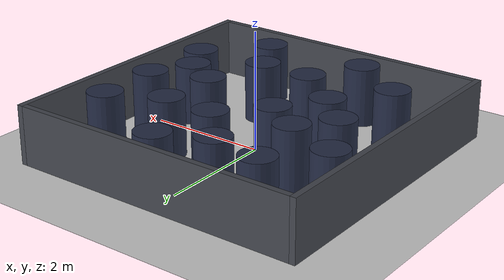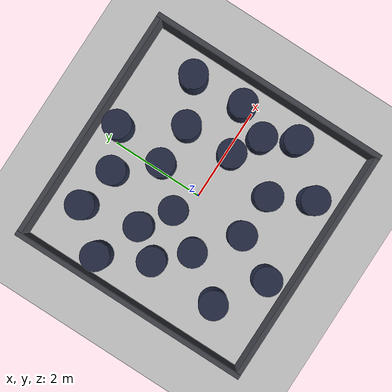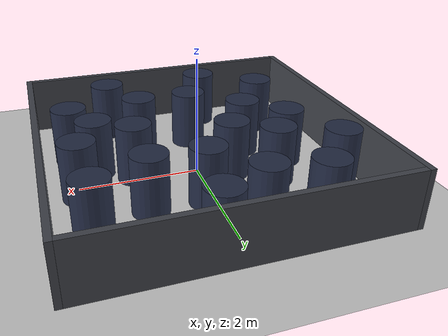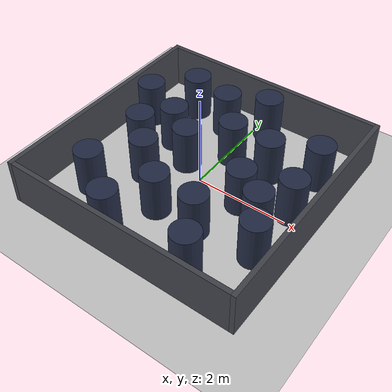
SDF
<sdf version="1.7">
 <world name="default">
  <model name="ground_plane">
   <static>1</static>
   <link name="link">
    <collision name="collision">
     <geometry><plane><normal>0 0 1</normal><size>100 100</size></plane></geometry>
     <surface>
      <contact><collide_bitmask>65535</collide_bitmask></contact>
      <friction><ode><mu>100</mu><mu2>50</mu2></ode></friction>
     </surface>
    </collision>
    <visual name="visual">
     <cast_shadows>0</cast_shadows>
     <geometry><plane><normal>0 0 1</normal><size>100 100</size></plane></geometry>
     <material>
      <script><uri>file://media/materials/scripts/gazebo.material</uri><name>Gazebo/Grey</name></script>
     </material>
    </visual>
   </link>
  </model>
  <gravity>0 0 -9.8</gravity>
  <magnetic_field>6e-06 2.3e-05 -4.2e-05</magnetic_field>
  <atmosphere type="adiabatic"/>
  <physics type="ode">
   <max_step_size>0.001</max_step_size>
   <real_time_factor>1</real_time_factor>
   <real_time_update_rate>1000</real_time_update_rate>
  </physics>
  <scene><ambient>0.32 0.32 0.32 1</ambient><background>0.7 0.7 0.7 1</background><shadows>1</shadows></scene>
  <spherical_coordinates>
   <surface_model>EARTH_WGS84</surface_model>
   <latitude_deg>0</latitude_deg>
   <longitude_deg>0</longitude_deg>
   <elevation>0</elevation>
   <heading_deg>0</heading_deg>
  </spherical_coordinates>
  <model name="region_wall_left">
   <static>1</static>
   <link name="link">
    <visual name="visual">
     <geometry><box><size>0.1 5.2 1</size></box></geometry>
     <material>
      <ambient>0.17 0.17 0.18 1</ambient>
      <diffuse>0.26 0.27 0.3 1</diffuse>
      <specular>0.02 0.02 0.02 1</specular>
     </material>
    </visual>
    <collision name="collision"><geometry><box><size>0.1 5.2 1</size></box></geometry></collision>
   </link>
   <pose>-2.55 0 0.5 0 -0 0</pose>
  </model>
  <model name="region_wall_right">
   <static>1</static>
   <link name="link">
    <visual name="visual">
     <geometry><box><size>0.1 5.2 1</size></box></geometry>
     <material>
      <ambient>0.17 0.17 0.18 1</ambient>
      <diffuse>0.26 0.27 0.3 1</diffuse>
      <specular>0.02 0.02 0.02 1</specular>
     </material>
    </visual>
    <collision name="collision"><geometry><box><size>0.1 5.2 1</size></box></geometry></collision>
   </link>
   <pose>2.55 0 0.5 0 -0 0</pose>
  </model>
  <model name="region_wall_bottom">
   <static>1</static>
   <link name="link">
    <visual name="visual">
     <geometry><box><size>5 0.1 1</size></box></geometry>
     <material>
      <ambient>0.17 0.17 0.18 1</ambient>
      <diffuse>0.26 0.27 0.3 1</diffuse>
      <specular>0.02 0.02 0.02 1</specular>
     </material>
    </visual>
    <collision name="collision"><geometry><box><size>5 0.1 1</size></box></geometry></collision>
   </link>
   <pose>0 -2.55 0.5 0 -0 0</pose>
  </model>
  <model name="region_wall_top">
   <static>1</static>
   <link name="link">
    <visual name="visual">
     <geometry><box><size>5 0.1 1</size></box></geometry>
     <material>
      <ambient>0.17 0.17 0.18 1</ambient>
      <diffuse>0.26 0.27 0.3 1</diffuse>
      <specular>0.02 0.02 0.02 1</specular>
     </material>
    </visual>
    <collision name="collision"><geometry><box><size>5 0.1 1</size></box></geometry></collision>
   </link>
   <pose>0 2.55 0.5 0 -0 0</pose>
  </model>
  <model name="blue_cylinder_0">
   <static>1</static>
   <link name="link">
    <visual name="visual">
     <geometry><cylinder><radius>0.3</radius><length>1</length></cylinder></geometry>
     <material>
      <ambient>0.06 0.07 0.112 1</ambient>
      <diffuse>0.14 0.17 0.27 1</diffuse>
      <specular>0.02 0.02 0.02 1</specular>
     </material>
    </visual>
    <collision name="collision">
     <geometry><cylinder><radius>0.3</radius><length>1</length></cylinder></geometry>
    </collision>
   </link>
   <pose>1.98794 0.239439 0.5 0 -0 0</pose>
  </model>
  <model name="blue_cylinder_1">
   <static>1</static>
   <link name="link">
    <visual name="visual">
     <geometry><cylinder><radius>0.3</radius><length>1</length></cylinder></geometry>
     <material>
      <ambient>0.06 0.07 0.112 1</ambient>
      <diffuse>0.14 0.17 0.27 1</diffuse>
      <specular>0.02 0.02 0.02 1</specular>
     </material>
    </visual>
    <collision name="collision">
     <geometry><cylinder><radius>0.3</radius><length>1</length></cylinder></geometry>
    </collision>
   </link>
   <pose>-1.59403 0.06918 0.5 0 -0 0</pose>
  </model>
  <model name="blue_cylinder_2">
   <static>1</static>
   <link name="link">
    <visual name="visual">
     <geometry><cylinder><radius>0.3</radius><length>1</length></cylinder></geometry>
     <material>
      <ambient>0.06 0.07 0.112 1</ambient>
      <diffuse>0.14 0.17 0.27 1</diffuse>
      <specular>0.02 0.02 0.02 1</specular>
     </material>
    </visual>
    <collision name="collision">
     <geometry><cylinder><radius>0.3</radius><length>1</length></cylinder></geometry>
    </collision>
   </link>
   <pose>1.97538 -1.05542 0.5 0 -0 0</pose>
  </model>
  <model name="blue_cylinder_3">
   <static>1</static>
   <link name="link">
    <visual name="visual">
     <geometry><cylinder><radius>0.3</radius><length>1</length></cylinder></geometry>
     <material>
      <ambient>0.06 0.07 0.112 1</ambient>
      <diffuse>0.14 0.17 0.27 1</diffuse>
      <specular>0.02 0.02 0.02 1</specular>
     </material>
    </visual>
    <collision name="collision">
     <geometry><cylinder><radius>0.3</radius><length>1</length></cylinder></geometry>
    </collision>
   </link>
   <pose>1.04415 -0.106193 0.5 0 -0 0</pose>
  </model>
  <model name="blue_cylinder_4">
   <static>1</static>
   <link name="link">
    <visual name="visual">
     <geometry><cylinder><radius>0.3</radius><length>1</length></cylinder></geometry>
     <material>
      <ambient>0.06 0.07 0.112 1</ambient>
      <diffuse>0.14 0.17 0.27 1</diffuse>
      <specular>0.02 0.02 0.02 1</specular>
     </material>
    </visual>
    <collision name="collision">
     <geometry><cylinder><radius>0.3</radius><length>1</length></cylinder></geometry>
    </collision>
   </link>
   <pose>-1.65117 -1.41515 0.5 0 -0 0</pose>
  </model>
  <model name="blue_cylinder_5">
   <static>1</static>
   <link name="link">
    <visual name="visual">
     <geometry><cylinder><radius>0.3</radius><length>1</length></cylinder></geometry>
     <material>
      <ambient>0.06 0.07 0.112 1</ambient>
      <diffuse>0.14 0.17 0.27 1</diffuse>
      <specular>0.02 0.02 0.02 1</specular>
     </material>
    </visual>
    <collision name="collision">
     <geometry><cylinder><radius>0.3</radius><length>1</length></cylinder></geometry>
    </collision>
   </link>
   <pose>0.297852 2.09755 0.5 0 -0 0</pose>
  </model>
  <model name="blue_cylinder_6">
   <static>1</static>
   <link name="link">
    <visual name="visual">
     <geometry><cylinder><radius>0.3</radius><length>1</length></cylinder></geometry>
     <material>
      <ambient>0.06 0.07 0.112 1</ambient>
      <diffuse>0.14 0.17 0.27 1</diffuse>
      <specular>0.02 0.02 0.02 1</specular>
     </material>
    </visual>
    <collision name="collision">
     <geometry><cylinder><radius>0.3</radius><length>1</length></cylinder></geometry>
    </collision>
   </link>
   <pose>1.15771 -1.98496 0.5 0 -0 0</pose>
  </model>
  <model name="blue_cylinder_7">
   <static>1</static>
   <link name="link">
    <visual name="visual">
     <geometry><cylinder><radius>0.3</radius><length>1</length></cylinder></geometry>
     <material>
      <ambient>0.06 0.07 0.112 1</ambient>
      <diffuse>0.14 0.17 0.27 1</diffuse>
      <specular>0.02 0.02 0.02 1</specular>
     </material>
    </visual>
    <collision name="collision">
     <geometry><cylinder><radius>0.3</radius><length>1</length></cylinder></geometry>
    </collision>
   </link>
   <pose>-1.01571 -0.514168 0.5 0 -0 0</pose>
  </model>
  <model name="blue_cylinder_8">
   <static>1</static>
   <link name="link">
    <visual name="visual">
     <geometry><cylinder><radius>0.3</radius><length>1</length></cylinder></geometry>
     <material>
      <ambient>0.06 0.07 0.112 1</ambient>
      <diffuse>0.14 0.17 0.27 1</diffuse>
      <specular>0.02 0.02 0.02 1</specular>
     </material>
    </visual>
    <collision name="collision">
     <geometry><cylinder><radius>0.3</radius><length>1</length></cylinder></geometry>
    </collision>
   </link>
   <pose>-0.520406 0.2521 0.5 0 -0 0</pose>
  </model>
  <model name="blue_cylinder_9">
   <static>1</static>
   <link name="link">
    <visual name="visual">
     <geometry><cylinder><radius>0.3</radius><length>1</length></cylinder></geometry>
     <material>
      <ambient>0.06 0.07 0.112 1</ambient>
      <diffuse>0.14 0.17 0.27 1</diffuse>
      <specular>0.02 0.02 0.02 1</specular>
     </material>
    </visual>
    <collision name="collision">
     <geometry><cylinder><radius>0.3</radius><length>1</length></cylinder></geometry>
    </collision>
   </link>
   <pose>-1.42567 1.85147 0.5 0 -0 0</pose>
  </model>
  <model name="blue_cylinder_10">
   <static>1</static>
   <link name="link">
    <visual name="visual">
     <geometry><cylinder><radius>0.3</radius><length>1</length></cylinder></geometry>
     <material>
      <ambient>0.06 0.07 0.112 1</ambient>
      <diffuse>0.14 0.17 0.27 1</diffuse>
      <specular>0.02 0.02 0.02 1</specular>
     </material>
    </visual>
    <collision name="collision">
     <geometry><cylinder><radius>0.3</radius><length>1</length></cylinder></geometry>
    </collision>
   </link>
   <pose>-2.10849 1.05295 0.5 0 -0 0</pose>
  </model>
  <model name="blue_cylinder_11">
   <static>1</static>
   <link name="link">
    <visual name="visual">
     <geometry><cylinder><radius>0.3</radius><length>1</length></cylinder></geometry>
     <material>
      <ambient>0.06 0.07 0.112 1</ambient>
      <diffuse>0.14 0.17 0.27 1</diffuse>
      <specular>0.02 0.02 0.02 1</specular>
     </material>
    </visual>
    <collision name="collision">
     <geometry><cylinder><radius>0.3</radius><length>1</length></cylinder></geometry>
    </collision>
   </link>
   <pose>-0.519973 1.70333 0.5 0 -0 0</pose>
  </model>
  <model name="blue_cylinder_12">
   <static>1</static>
   <link name="link">
    <visual name="visual">
     <geometry><cylinder><radius>0.3</radius><length>1</length></cylinder></geometry>
     <material>
      <ambient>0.06 0.07 0.112 1</ambient>
      <diffuse>0.14 0.17 0.27 1</diffuse>
      <specular>0.02 0.02 0.02 1</specular>
     </material>
    </visual>
    <collision name="collision">
     <geometry><cylinder><radius>0.3</radius><length>1</length></cylinder></geometry>
    </collision>
   </link>
   <pose>-1.16069 0.659942 0.5 0 -0 0</pose>
  </model>
  <model name="blue_cylinder_13">
   <static>1</static>
   <link name="link">
    <visual name="visual">
     <geometry><cylinder><radius>0.3</radius><length>1</length></cylinder></geometry>
     <material>
      <ambient>0.06 0.07 0.112 1</ambient>
      <diffuse>0.14 0.17 0.27 1</diffuse>
      <specular>0.02 0.02 0.02 1</specular>
     </material>
    </visual>
    <collision name="collision">
     <geometry><cylinder><radius>0.3</radius><length>1</length></cylinder></geometry>
    </collision>
   </link>
   <pose>0.723568 -1.17133 0.5 0 -0 0</pose>
  </model>
  <model name="blue_cylinder_14">
   <static>1</static>
   <link name="link">
    <visual name="visual">
     <geometry><cylinder><radius>0.3</radius><length>1</length></cylinder></geometry>
     <material>
      <ambient>0.06 0.07 0.112 1</ambient>
      <diffuse>0.14 0.17 0.27 1</diffuse>
      <specular>0.02 0.02 0.02 1</specular>
     </material>
    </visual>
    <collision name="collision">
     <geometry><cylinder><radius>0.3</radius><length>1</length></cylinder></geometry>
    </collision>
   </link>
   <pose>1.93905 1.36946 0.5 0 -0 0</pose>
  </model>
  <model name="blue_cylinder_15">
   <static>1</static>
   <link name="link">
    <visual name="visual">
     <geometry><cylinder><radius>0.3</radius><length>1</length></cylinder></geometry>
     <material>
      <ambient>0.06 0.07 0.112 1</ambient>
      <diffuse>0.14 0.17 0.27 1</diffuse>
      <specular>0.02 0.02 0.02 1</specular>
     </material>
    </visual>
    <collision name="collision">
     <geometry><cylinder><radius>0.3</radius><length>1</length></cylinder></geometry>
    </collision>
   </link>
   <pose>1.6396 -0.437416 0.5 0 -0 0</pose>
  </model>
  <model name="blue_cylinder_16">
   <static>1</static>
   <link name="link">
    <visual name="visual">
     <geometry><cylinder><radius>0.3</radius><length>1</length></cylinder></geometry>
     <material>
      <ambient>0.06 0.07 0.112 1</ambient>
      <diffuse>0.14 0.17 0.27 1</diffuse>
      <specular>0.02 0.02 0.02 1</specular>
     </material>
    </visual>
    <collision name="collision">
     <geometry><cylinder><radius>0.3</radius><length>1</length></cylinder></geometry>
    </collision>
   </link>
   <pose>0.129772 0.969099 0.5 0 -0 0</pose>
  </model>
  <model name="blue_cylinder_17">
   <static>1</static>
   <link name="link">
    <visual name="visual">
     <geometry><cylinder><radius>0.3</radius><length>1</length></cylinder></geometry>
     <material>
      <ambient>0.06 0.07 0.112 1</ambient>
      <diffuse>0.14 0.17 0.27 1</diffuse>
      <specular>0.02 0.02 0.02 1</specular>
     </material>
    </visual>
    <collision name="collision">
     <geometry><cylinder><radius>0.3</radius><length>1</length></cylinder></geometry>
    </collision>
   </link>
   <pose>-0.20163 -1.15754 0.5 0 -0 0</pose>
  </model>
  <model name="blue_cylinder_18">
   <static>1</static>
   <link name="link">
    <visual name="visual">
     <geometry><cylinder><radius>0.3</radius><length>1</length></cylinder></geometry>
     <material>
      <ambient>0.06 0.07 0.112 1</ambient>
      <diffuse>0.14 0.17 0.27 1</diffuse>
      <specular>0.02 0.02 0.02 1</specular>
     </material>
    </visual>
    <collision name="collision">
     <geometry><cylinder><radius>0.3</radius><length>1</length></cylinder></geometry>
    </collision>
   </link>
   <pose>-0.682049 -2.05425 0.5 0 -0 0</pose>
  </model>
  <model name="blue_cylinder_19">
   <static>1</static>
   <link name="link">
    <visual name="visual">
     <geometry><cylinder><radius>0.3</radius><length>1</length></cylinder></geometry>
     <material>
      <ambient>0.06 0.07 0.112 1</ambient>
      <diffuse>0.14 0.17 0.27 1</diffuse>
      <specular>0.02 0.02 0.02 1</specular>
     </material>
    </visual>
    <collision name="collision">
     <geometry><cylinder><radius>0.3</radius><length>1</length></cylinder></geometry>
    </collision>
   </link>
   <pose>1.03058 0.946464 0.5 0 -0 0</pose>
  </model>
  <light name="user_directional_light_0" type="directional">
   <pose>8.82764 2.91095 1 0 -0 0</pose>
   <diffuse>0.5 0.5 0.5 1</diffuse>
   <specular>0.1 0.1 0.1 1</specular>
   <direction>0.1 0.1 -0.9</direction>
   <attenuation>
    <range>20</range>
    <constant>0.5</constant>
    <linear>0.01</linear>
    <quadratic>0.001</quadratic>
   </attenuation>
   <spot><inner_angle>0</inner_angle><outer_angle>0</outer_angle><falloff>0</falloff></spot>
  </light>
  <light name="user_directional_light_1" type="directional">
   <pose>-7.8244 2.91635 1 0 -0 0</pose>
   <diffuse>0.5 0.5 0.5 1</diffuse>
   <specular>0.1 0.1 0.1 1</specular>
   <direction>0.1 0.1 -0.9</direction>
   <attenuation>
    <range>20</range>
    <constant>0.5</constant>
    <linear>0.01</linear>
    <quadratic>0.001</quadratic>
   </attenuation>
   <spot><inner_angle>0</inner_angle><outer_angle>0</outer_angle><falloff>0</falloff></spot>
  </light>
  <light name="user_directional_light_2" type="directional">
   <pose>-7.75772 -4.88479 1 0 -0 0</pose>
   <diffuse>0.5 0.5 0.5 1</diffuse>
   <specular>0.1 0.1 0.1 1</specular>
   <direction>0.1 0.1 -0.9</direction>
   <attenuation>
    <range>20</range>
    <constant>0.5</constant>
    <linear>0.01</linear>
    <quadratic>0.001</quadratic>
   </attenuation>
   <spot><inner_angle>0</inner_angle><outer_angle>0</outer_angle><falloff>0</falloff></spot>
  </light>
  <light name="user_directional_light_3" type="directional">
   <pose>8.88456 -3.92028 1 0 -0 0</pose>
   <diffuse>0.5 0.5 0.5 1</diffuse>
   <specular>0.1 0.1 0.1 1</specular>
   <direction>0.1 0.1 -0.9</direction>
   <attenuation>
    <range>20</range>
    <constant>0.5</constant>
    <linear>0.01</linear>
    <quadratic>0.001</quadratic>
   </attenuation>
   <spot><inner_angle>0</inner_angle><outer_angle>0</outer_angle><falloff>0</falloff></spot>
  </light>
 </world>
</sdf>
